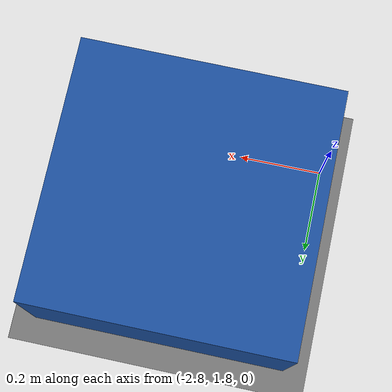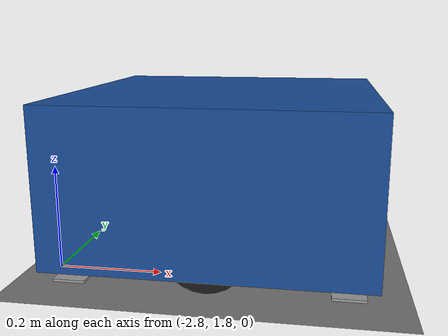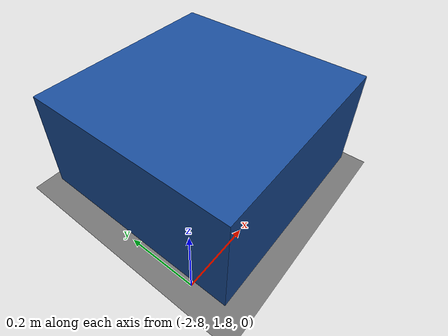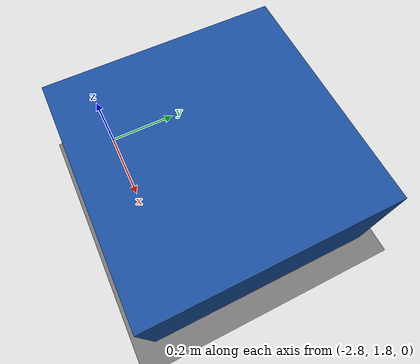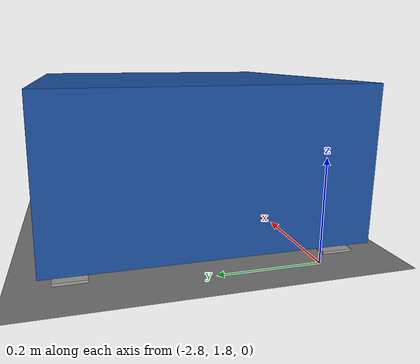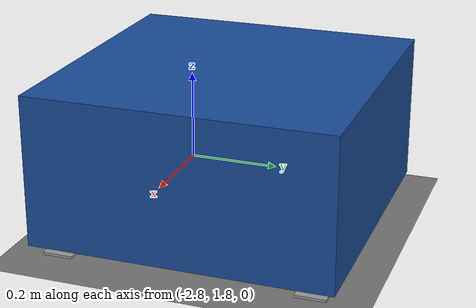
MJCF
<mujoco model="turtlebot">
  <compiler angle="degree" coordinate="local" inertiafromgeom="true"/>
  <option timestep="0.005" gravity="0 0 -9.81"/>

  <default>
    <geom solref="0.02 1" solimp="0.9 0.95 0.001"/>
  </default>

  <worldbody>
    <light directional="true" diffuse=".6 .6 .6" specular="0.2 0.2 0.2" pos="0 0 5" dir="0 0 -1"/>
    <!-- Ground plane - industrial gray -->
    <geom name="floor" type="plane" size="10 10 .05" rgba="0.45 0.45 0.45 1" condim="3"/>

    <!-- Robot body: 600x600x300mm, 60 kg total, industrial blue -->
    <body name="robot" pos="-2.5 2.0 0.08">
      <freejoint name="root"/>
      <!-- Main chassis: 54 kg (remaining 6 kg in wheels) -->
      <geom name="base" type="box" size="0.30 0.30 0.15" pos="0 0 0.10" rgba="0.1 0.3 0.6 1.0" mass="54.0"/>

      <geom name="pad_fl" type="box" size="0.03 0.03 0.0025" pos=" 0.25  0.25 -0.0725"
            rgba="0.6 0.6 0.6 1" condim="1" mass="0.5"/>
      <geom name="pad_fr" type="box" size="0.03 0.03 0.0025" pos=" 0.25 -0.25 -0.0725"
            rgba="0.6 0.6 0.6 1" condim="1" mass="0.5"/>
      <geom name="pad_rl" type="box" size="0.03 0.03 0.0025" pos="-0.25  0.25 -0.0725"
            rgba="0.6 0.6 0.6 1" condim="1" mass="0.5"/>
      <geom name="pad_rr" type="box" size="0.03 0.03 0.0025" pos="-0.25 -0.25 -0.0725"
            rgba="0.6 0.6 0.6 1" condim="1" mass="0.5"/>

      <!-- Left Drive Wheel: 2 kg, radius=80mm, thickness=40.5mm, wheelbase=512mm -->
      <body name="left_wheel" pos="0 0.256 0" quat="0.7071 0.7071 0 0">
        <joint name="left_wheel_joint" type="hinge" axis="0 0 1" damping="0.5"/>
        <geom type="cylinder" size="0.08 0.02025" rgba="0.1 0.1 0.1 1" mass="2.0"
              friction="1.0 0.005 0.0001" condim="3"/>
      </body>

      <!-- Right Drive Wheel -->
      <body name="right_wheel" pos="0 -0.256 0" quat="0.7071 0.7071 0 0">
        <joint name="right_wheel_joint" type="hinge" axis="0 0 1" damping="0.5"/>
        <geom type="cylinder" size="0.08 0.02025" rgba="0.1 0.1 0.1 1" mass="2.0"
              friction="1.0 0.005 0.0001" condim="3"/>
      </body>
    </body>
  </worldbody>

  <actuator>
    <velocity name="left_wheel_motor"  joint="left_wheel_joint"  kv="3.0" ctrlrange="-60 60" forcerange="-10 10"/>
    <velocity name="right_wheel_motor" joint="right_wheel_joint" kv="3.0" ctrlrange="-60 60" forcerange="-10 10"/>
  </actuator>

  <contact>
    <exclude body1="robot" body2="left_wheel"/>
    <exclude body1="robot" body2="right_wheel"/>
  </contact>
</mujoco>
